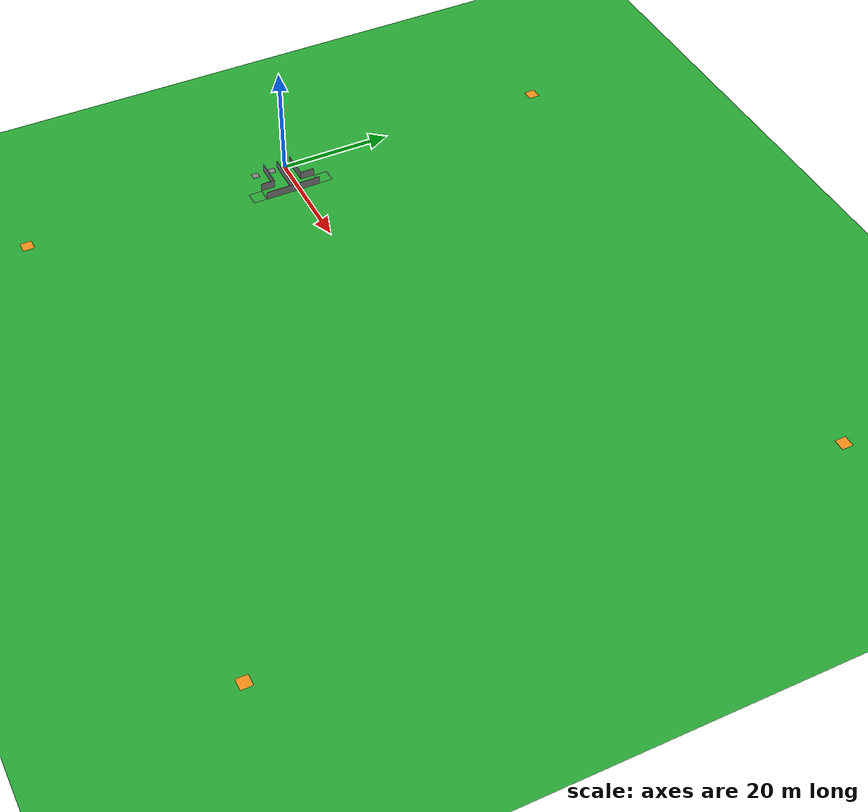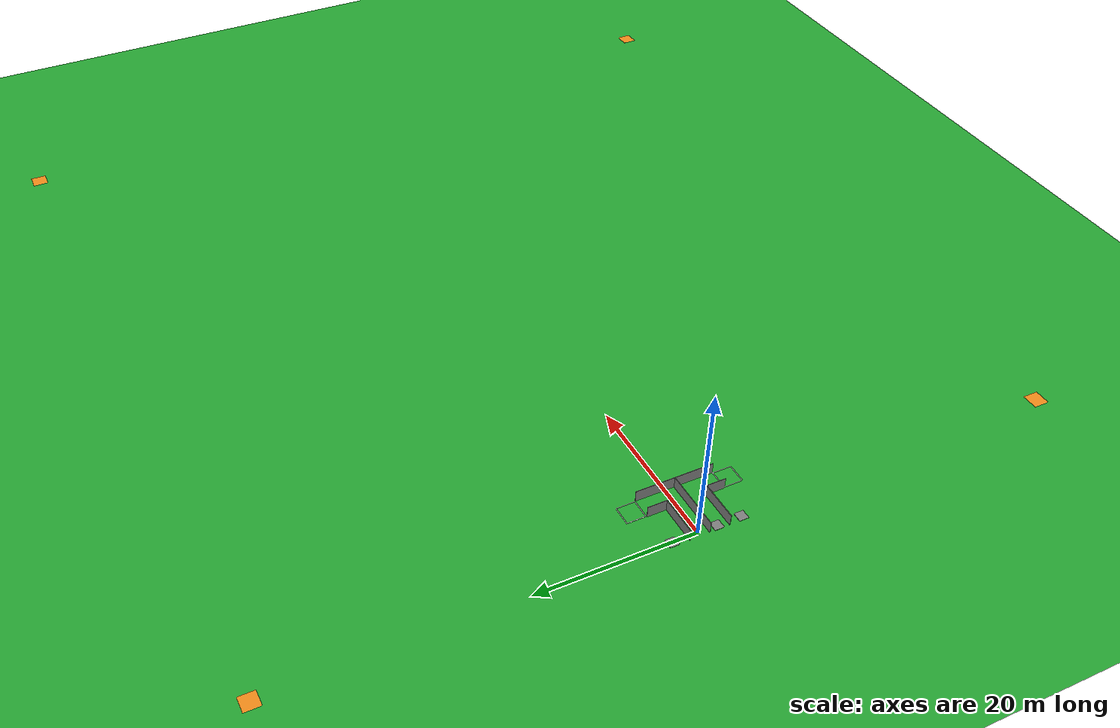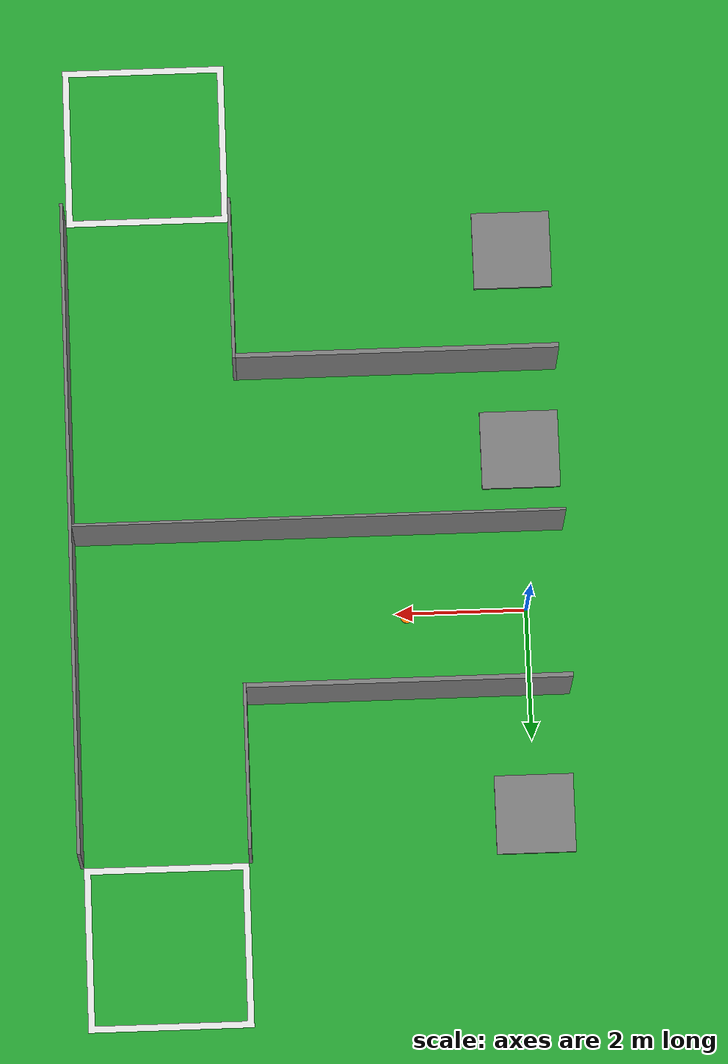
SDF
<sdf version="1.7">
 <world name="default">
  <scene><ambient>0.4 0.4 0.4 1</ambient><background>0.7 0.7 0.7 1</background><shadows>1</shadows></scene>
  <light name="sun" type="directional">
   <pose>0 0 10 0 -0 0</pose>
   <diffuse>1 1 1 1</diffuse>
   <specular>1 1 1 1</specular>
   <attenuation>
    <range>1000</range>
    <constant>0.9</constant>
    <linear>0.01</linear>
    <quadratic>0.001</quadratic>
   </attenuation>
   <direction>0.1 0.1 -0.9</direction>
   <spot><inner_angle>0</inner_angle><outer_angle>0</outer_angle><falloff>0</falloff></spot>
  </light>
  <model name="grass_field">
   <pose>49.4 1.25 0 0 -0 0</pose>
   <static>1</static>
   <link name="link">
    <collision name="collision">
     <geometry><plane><normal>0 0 1</normal><size>100 100</size></plane></geometry>
     <surface>
      <contact><collide_bitmask>65535</collide_bitmask></contact>
      <friction><ode><mu>100</mu><mu2>50</mu2></ode></friction>
     </surface>
    </collision>
    <visual name="visual">
     <cast_shadows>0</cast_shadows>
     <geometry><plane><normal>0 0 1</normal><size>100 100</size></plane></geometry>
     <material>
      <script><uri>file://media/materials/scripts/gazebo.material</uri><name>Gazebo/Green</name></script>
     </material>
    </visual>
   </link>
  </model>
  <gravity>0 0 -9.8</gravity>
  <magnetic_field>6e-06 2.3e-05 -4.2e-05</magnetic_field>
  <atmosphere type="adiabatic"/>
  <physics type="ode">
   <max_step_size>0.001</max_step_size>
   <real_time_factor>1</real_time_factor>
   <real_time_update_rate>1000</real_time_update_rate>
  </physics>
  <scene><ambient>0.4 0.4 0.4 1</ambient><background>0.7 0.7 0.7 1</background><shadows>1</shadows></scene>
  <spherical_coordinates>
   <surface_model>EARTH_WGS84</surface_model>
   <latitude_deg>0</latitude_deg>
   <longitude_deg>0</longitude_deg>
   <elevation>0</elevation>
   <heading_deg>0</heading_deg>
  </spherical_coordinates>
  <model name="orange_board_1">
   <pose>0.4 50.25 0 0 -0 0</pose>
   <static>1</static>
   <link name="link">
    <collision name="collision"><geometry><box><size>2 2 0.001</size></box></geometry></collision>
    <visual name="visual">
     <geometry><box><size>2 2 0.001</size></box></geometry>
     <material>
      <script><uri>file://media/materials/scripts/gazebo.material</uri><name>Gazebo/Orange</name></script>
     </material>
    </visual>
   </link>
  </model>
  <model name="orange_board_2">
   <pose>98.4 50.25 0 0 -0 0</pose>
   <static>1</static>
   <link name="link">
    <collision name="collision"><geometry><box><size>2 2 0.001</size></box></geometry></collision>
    <visual name="visual">
     <geometry><box><size>2 2 0.001</size></box></geometry>
     <material>
      <script><uri>file://media/materials/scripts/gazebo.material</uri><name>Gazebo/Orange</name></script>
     </material>
    </visual>
   </link>
  </model>
  <model name="orange_board_3">
   <pose>98.4 -47.75 0 0 -0 0</pose>
   <static>1</static>
   <link name="link">
    <collision name="collision"><geometry><box><size>2 2 0.001</size></box></geometry></collision>
    <visual name="visual">
     <geometry><box><size>2 2 0.001</size></box></geometry>
     <material>
      <script><uri>file://media/materials/scripts/gazebo.material</uri><name>Gazebo/Orange</name></script>
     </material>
    </visual>
   </link>
  </model>
  <model name="orange_board_4">
   <pose>0.4 -47.75 0 0 -0 0</pose>
   <static>1</static>
   <link name="link">
    <collision name="collision"><geometry><box><size>2 2 0.001</size></box></geometry></collision>
    <visual name="visual">
     <geometry><box><size>2 2 0.001</size></box></geometry>
     <material>
      <script><uri>file://media/materials/scripts/gazebo.material</uri><name>Gazebo/Orange</name></script>
     </material>
    </visual>
   </link>
  </model>
  <model name="wall1">
   <pose>3.125 -1.25 0.75 0 -0 0</pose>
   <static>1</static>
   <link name="link">
    <collision name="collision"><geometry><box><size>7.45 0.04 1.5</size></box></geometry></collision>
    <visual name="visual">
     <geometry><box><size>7.45 0.04 1.5</size></box></geometry>
     <material>
      <ambient>0.5 0.5 0.5 1</ambient>
      <diffuse>0.5 0.5 0.5 1</diffuse>
      <specular>0.1 0.1 0.1 1</specular>
      <emissive>0 0 0 0</emissive>
     </material>
    </visual>
   </link>
  </model>
  <model name="wall2">
   <pose>6.875 -1.25 0.75 0 -0 1.5708</pose>
   <static>1</static>
   <link name="link">
    <collision name="collision"><geometry><box><size>10 0.05 1.5</size></box></geometry></collision>
    <visual name="visual">
     <geometry><box><size>10 0.05 1.5</size></box></geometry>
     <material>
      <ambient>0.5 0.5 0.5 1</ambient>
      <diffuse>0.5 0.5 0.5 1</diffuse>
      <specular>0.1 0.1 0.1 1</specular>
      <emissive>0 0 0 0</emissive>
     </material>
    </visual>
   </link>
  </model>
  <model name="wall3">
   <pose>1.85 -3.785 0.75 0 -0 0</pose>
   <static>1</static>
   <link name="link">
    <collision name="collision"><geometry><box><size>4.9 0.07 1.5</size></box></geometry></collision>
    <visual name="visual">
     <geometry><box><size>4.9 0.07 1.5</size></box></geometry>
     <material>
      <ambient>0.5 0.5 0.5 1</ambient>
      <diffuse>0.5 0.5 0.5 1</diffuse>
      <specular>0.1 0.1 0.1 1</specular>
      <emissive>0 0 0 0</emissive>
     </material>
    </visual>
   </link>
  </model>
  <model name="wall4">
   <pose>4.325 -5 0.75 0 -0 1.5708</pose>
   <static>1</static>
   <link name="link">
    <collision name="collision"><geometry><box><size>2.5 0.05 1.5</size></box></geometry></collision>
    <visual name="visual">
     <geometry><box><size>2.5 0.05 1.5</size></box></geometry>
     <material>
      <ambient>0.5 0.5 0.5 1</ambient>
      <diffuse>0.5 0.5 0.5 1</diffuse>
      <specular>0.1 0.1 0.1 1</specular>
      <emissive>0 0 0 0</emissive>
     </material>
    </visual>
   </link>
  </model>
  <model name="wall5">
   <pose>1.85 1.285 0.75 0 -0 0</pose>
   <static>1</static>
   <link name="link">
    <collision name="collision"><geometry><box><size>4.9 0.07 1.5</size></box></geometry></collision>
    <visual name="visual">
     <geometry><box><size>4.9 0.07 1.5</size></box></geometry>
     <material>
      <ambient>0.5 0.5 0.5 1</ambient>
      <diffuse>0.5 0.5 0.5 1</diffuse>
      <specular>0.1 0.1 0.1 1</specular>
      <emissive>0 0 0 0</emissive>
     </material>
    </visual>
   </link>
  </model>
  <model name="wall6">
   <pose>4.325 2.5 0.75 0 -0 1.5708</pose>
   <static>1</static>
   <link name="link">
    <collision name="collision"><geometry><box><size>2.5 0.05 1.5</size></box></geometry></collision>
    <visual name="visual">
     <geometry><box><size>2.5 0.05 1.5</size></box></geometry>
     <material>
      <ambient>0.5 0.5 0.5 1</ambient>
      <diffuse>0.5 0.5 0.5 1</diffuse>
      <specular>0.1 0.1 0.1 1</specular>
      <emissive>0 0 0 0</emissive>
     </material>
    </visual>
   </link>
  </model>
  <model name="right_start_indoor">
   <pose>0 -5.65 0.025 0 -0 0</pose>
   <static>1</static>
   <link name="link">
    <collision name="collision"><geometry><box><size>1.2 1.2 0.05</size></box></geometry></collision>
    <visual name="visual">
     <geometry><box><size>1.2 1.2 0.05</size></box></geometry>
     <material>
      <ambient>0.5 0.5 0.5 1</ambient>
      <diffuse>0.5 0.5 0.5 1</diffuse>
      <specular>0.1 0.1 0.1 1</specular>
      <emissive>0 0 0 0</emissive>
     </material>
    </visual>
   </link>
  </model>
  <model name="right_start_outdoor">
   <pose>0 -2.5 0.025 0 -0 0</pose>
   <static>1</static>
   <link name="link">
    <collision name="collision"><geometry><box><size>1.2 1.2 0.05</size></box></geometry></collision>
    <visual name="visual">
     <geometry><box><size>1.2 1.2 0.05</size></box></geometry>
     <material>
      <ambient>0.5 0.5 0.5 1</ambient>
      <diffuse>0.5 0.5 0.5 1</diffuse>
      <specular>0.1 0.1 0.1 1</specular>
      <emissive>0 0 0 0</emissive>
     </material>
    </visual>
   </link>
  </model>
  <model name="left_start_outdoor">
   <pose>0 3.15 0.025 0 -0 0</pose>
   <static>1</static>
   <link name="link">
    <collision name="collision"><geometry><box><size>1.2 1.2 0.05</size></box></geometry></collision>
    <visual name="visual">
     <geometry><box><size>1.2 1.2 0.05</size></box></geometry>
     <material>
      <ambient>0.5 0.5 0.5 1</ambient>
      <diffuse>0.5 0.5 0.5 1</diffuse>
      <specular>0.1 0.1 0.1 1</specular>
      <emissive>0 0 0 0</emissive>
     </material>
    </visual>
   </link>
  </model>
  <model name="right_dropzone_area">
   <pose>5.6 -7.5 0.026 0 -0 0</pose>
   <static>1</static>
   <link name="link">
    <collision name="collision"><geometry><box><size>2.3 2.3 0.001</size></box></geometry></collision>
    <visual name="visual">
     <geometry><box><size>2.3 2.3 0.001</size></box></geometry>
     <material>
      <script><uri>file://media/materials/scripts/gazebo.material</uri><name>Gazebo/Green</name></script>
     </material>
    </visual>
   </link>
  </model>
  <model name="right_dropzone_area_barrier">
   <pose>5.6 -7.5 0.025 0 -0 0</pose>
   <static>1</static>
   <link name="link">
    <collision name="collision"><geometry><box><size>2.5 2.5 0.001</size></box></geometry></collision>
    <visual name="visual">
     <geometry><box><size>2.5 2.5 0.001</size></box></geometry>
     <material>
      <script><uri>file://media/materials/scripts/gazebo.material</uri><name>Gazebo/White</name></script>
     </material>
    </visual>
   </link>
  </model>
  <model name="left_dropzone_area">
   <pose>5.6 5 0.026 0 -0 0</pose>
   <static>1</static>
   <link name="link">
    <collision name="collision"><geometry><box><size>2.3 2.3 0.001</size></box></geometry></collision>
    <visual name="visual">
     <geometry><box><size>2.3 2.3 0.001</size></box></geometry>
     <material>
      <script><uri>file://media/materials/scripts/gazebo.material</uri><name>Gazebo/Green</name></script>
     </material>
    </visual>
   </link>
  </model>
  <model name="left_dropzone_area_barrier">
   <pose>5.6 5 0.025 0 -0 0</pose>
   <static>1</static>
   <link name="link">
    <collision name="collision"><geometry><box><size>2.5 2.5 0.001</size></box></geometry></collision>
    <visual name="visual">
     <geometry><box><size>2.5 2.5 0.001</size></box></geometry>
     <material>
      <script><uri>file://media/materials/scripts/gazebo.material</uri><name>Gazebo/White</name></script>
     </material>
    </visual>
   </link>
  </model>
  <model name="payload"><pose>1 0 0.01 0 -0 0</pose></model>
  <model name="drop_zone"><pose>5.50525 4.93527 0.035956 0 -0 0</pose></model>
  <model name="unit_cylinder">
   <pose>1.82513 0.042479 0.005 0 -0 0</pose>
   <link name="link">
    <inertial>
     <mass>1</mass>
     <inertia><ixx>0.0001</ixx><ixy>0</ixy><ixz>0</ixz><iyy>0.0001</iyy><iyz>0</iyz><izz>0.0001</izz></inertia>
    </inertial>
    <collision name="collision">
     <geometry><cylinder><radius>0.05</radius><length>0.01</length></cylinder></geometry>
    </collision>
    <visual name="visual">
     <geometry><cylinder><radius>0.1</radius><length>0.01</length></cylinder></geometry>
     <material><ambient>0.25 0.125 0 1</ambient><diffuse>1 0.5 0 1</diffuse></material>
    </visual>
   </link>
  </model>
 </world>
</sdf>
